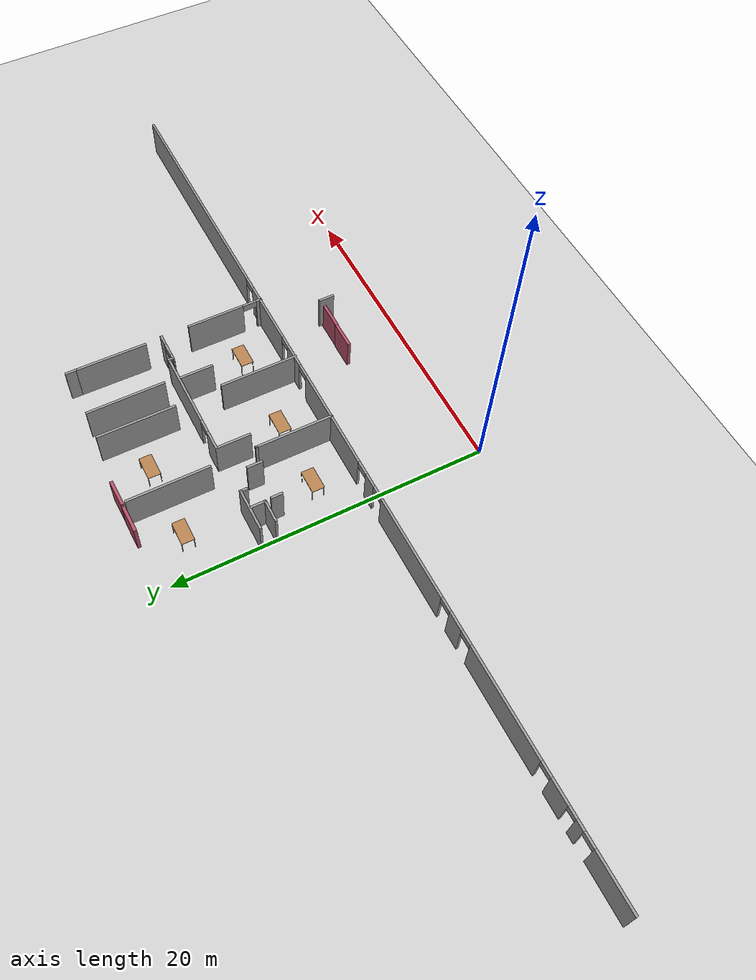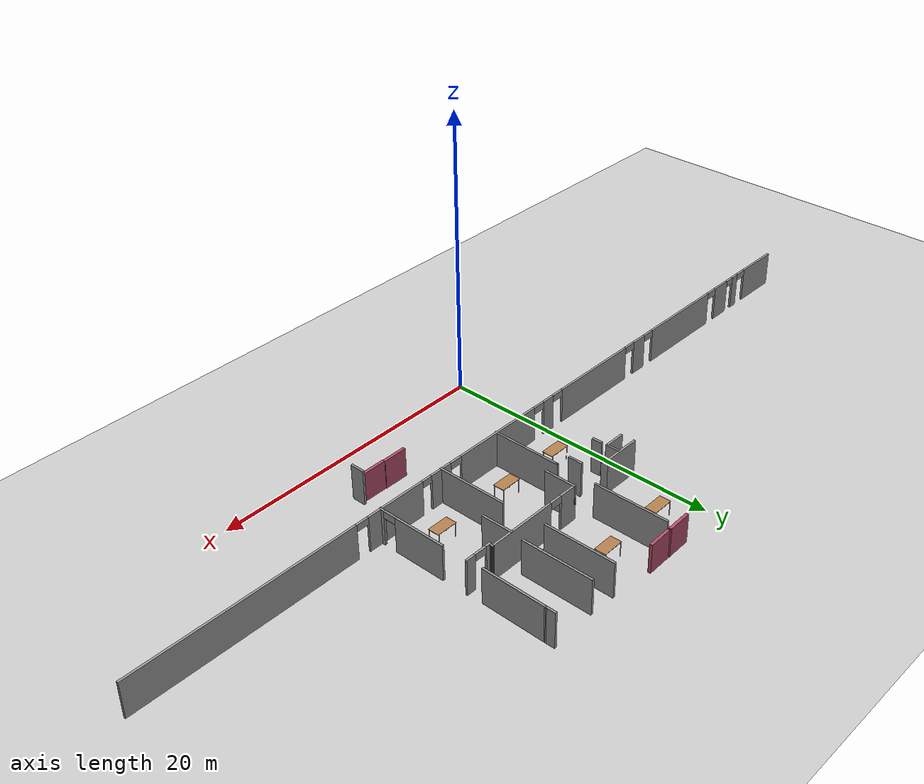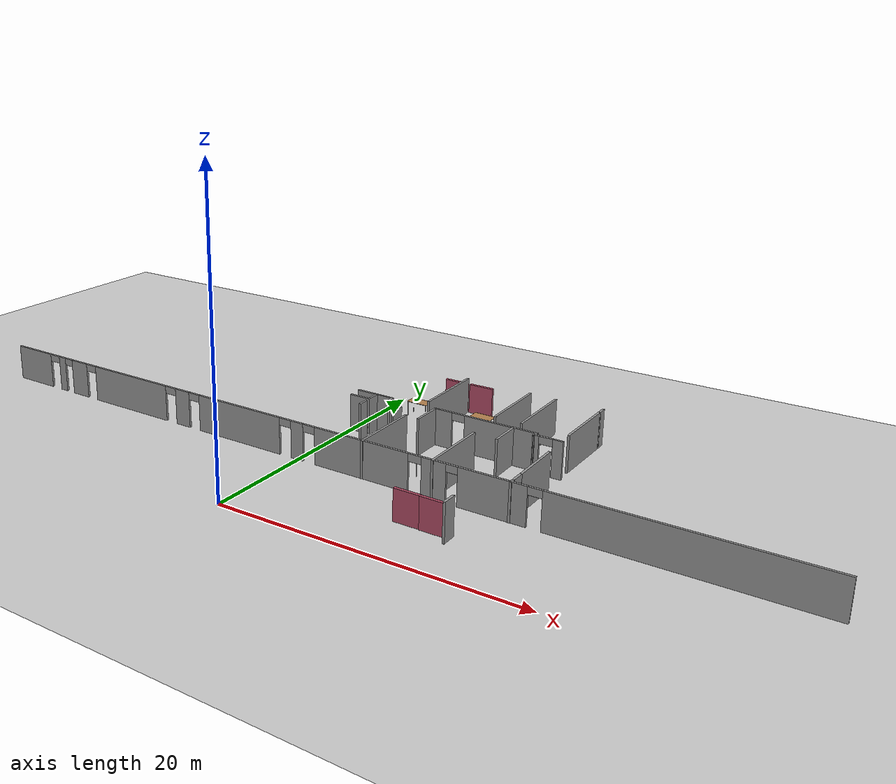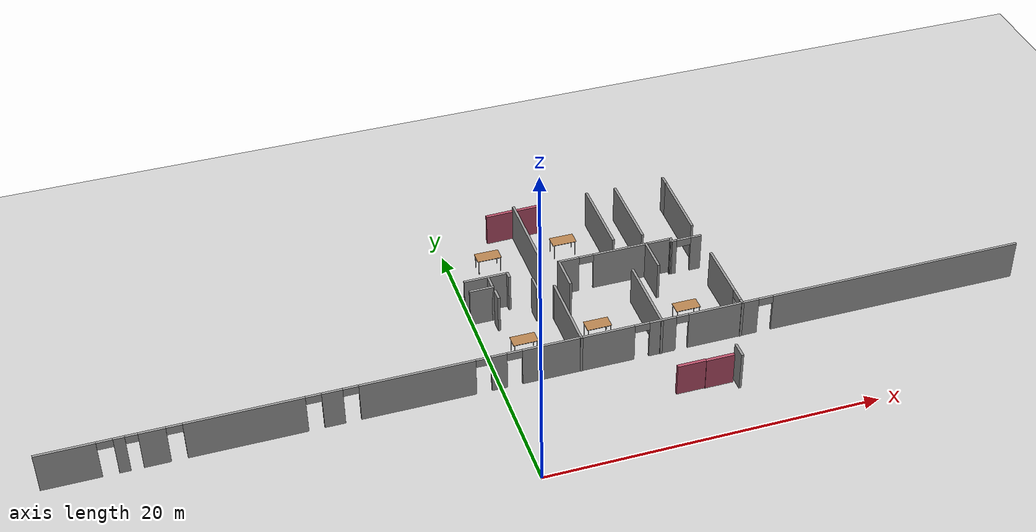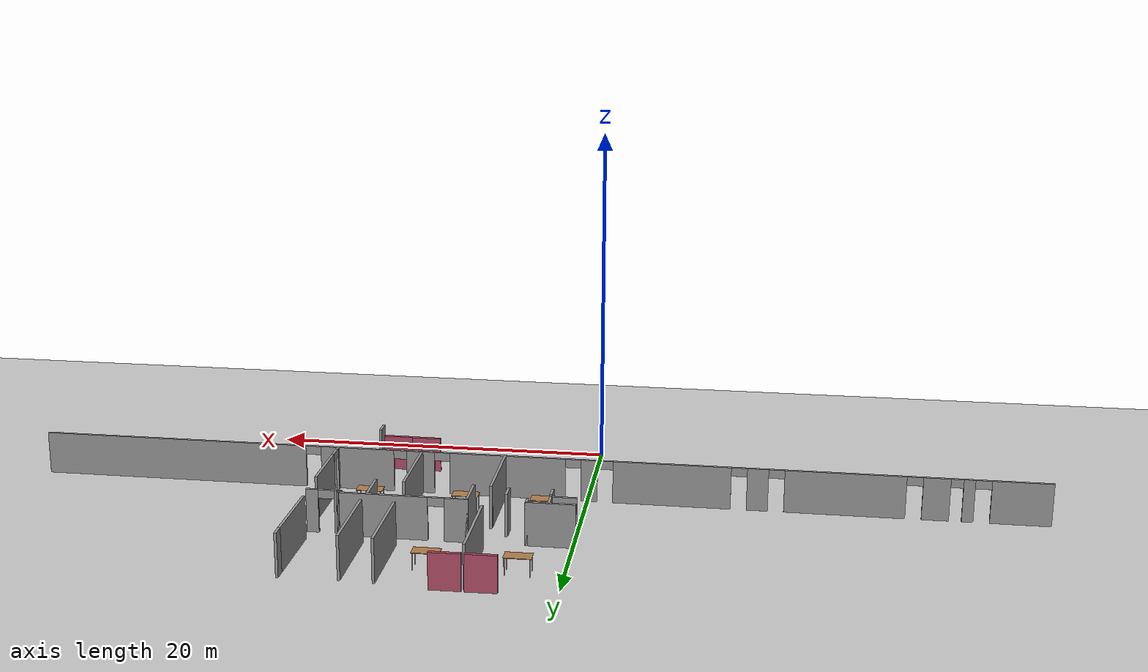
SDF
<sdf version="1.6">
 <world name="default">
  <model name="ground_plane">
   <static>1</static>
   <link name="link">
    <collision name="collision">
     <geometry><plane><normal>0 0 1</normal><size>100 100</size></plane></geometry>
     <surface><friction><ode><mu>100</mu><mu2>50</mu2></ode></friction></surface>
    </collision>
    <visual name="visual">
     <cast_shadows>0</cast_shadows>
     <geometry><plane><normal>0 0 1</normal><size>100 100</size></plane></geometry>
     <material>
      <script><uri>file://media/materials/scripts/gazebo.material</uri><name>Gazebo/Grey</name></script>
     </material>
    </visual>
   </link>
  </model>
  <model name="fin_se1f1.sdf">
   <pose>1.8125 -2.2901 0 0 -0 0</pose>
   <link name="Wall_109">
    <collision name="Wall_109_Collision">
     <geometry><box><size>2.75 0.15 2.5</size></box></geometry>
     <pose>0 0 1.25 0 -0 0</pose>
    </collision>
    <visual name="Wall_109_Visual">
     <pose>0 0 1.25 0 -0 0</pose>
     <geometry><box><size>2.75 0.15 2.5</size></box></geometry>
     <material>
      <script><uri>file://media/materials/scripts/gazebo.material</uri><name>Gazebo/Grey</name></script>
      <ambient>1 1 1 1</ambient>
     </material>
     <meta><layer>0</layer></meta>
    </visual>
    <pose>-0.574318 16.7244 0 0 -0 0</pose>
   </link>
   <link name="Wall_110">
    <collision name="Wall_110_Collision">
     <geometry><box><size>0.5 0.15 2.5</size></box></geometry>
     <pose>0 0 1.25 0 -0 0</pose>
    </collision>
    <visual name="Wall_110_Visual">
     <pose>0 0 1.25 0 -0 0</pose>
     <geometry><box><size>0.5 0.15 2.5</size></box></geometry>
     <material>
      <script><uri>file://media/materials/scripts/gazebo.material</uri><name>Gazebo/Grey</name></script>
      <ambient>1 1 1 1</ambient>
     </material>
     <meta><layer>0</layer></meta>
    </visual>
    <pose>0.725682 16.5494 0 0 0 -1.5708</pose>
   </link>
   <link name="Wall_141">
    <pose>11.923 16.5396 0 0 -0 3.14159</pose>
    <visual name="Wall_141_Visual_0">
     <pose>-0.657066 0 1.25 0 -0 0</pose>
     <geometry><box><size>0.685867 0.15 2.5</size></box></geometry>
     <material>
      <script><uri>file://media/materials/scripts/gazebo.material</uri><name>Gazebo/Grey</name></script>
      <ambient>1 1 1 1</ambient>
     </material>
     <meta><layer>0</layer></meta>
    </visual>
    <collision name="Wall_141_Collision_0">
     <geometry><box><size>0.685867 0.15 2.5</size></box></geometry>
     <pose>-0.657066 0 1.25 0 -0 0</pose>
    </collision>
    <visual name="Wall_141_Visual_1">
     <pose>0.792934 0 1.25 0 -0 0</pose>
     <geometry><box><size>0.414133 0.15 2.5</size></box></geometry>
     <material>
      <script><uri>file://media/materials/scripts/gazebo.material</uri><name>Gazebo/Grey</name></script>
      <ambient>1 1 1 1</ambient>
     </material>
     <meta><layer>0</layer></meta>
    </visual>
    <collision name="Wall_141_Collision_1">
     <geometry><box><size>0.414133 0.15 2.5</size></box></geometry>
     <pose>0.792934 0 1.25 0 -0 0</pose>
    </collision>
    <visual name="Wall_141_Visual_2">
     <pose>0.135867 0 2.25 0 -0 0</pose>
     <geometry><box><size>0.9 0.15 0.5</size></box></geometry>
     <material>
      <script><uri>file://media/materials/scripts/gazebo.material</uri><name>Gazebo/Grey</name></script>
      <ambient>1 1 1 1</ambient>
     </material>
     <meta><layer>0</layer></meta>
    </visual>
    <collision name="Wall_141_Collision_2">
     <geometry><box><size>0.9 0.15 0.5</size></box></geometry>
     <pose>0.135867 0 2.25 0 -0 0</pose>
    </collision>
   </link>
   <link name="Wall_144">
    <collision name="Wall_144_Collision">
     <geometry><box><size>2.25 0.15 2.5</size></box></geometry>
     <pose>0 0 1.25 0 -0 0</pose>
    </collision>
    <visual name="Wall_144_Visual">
     <pose>0 0 1.25 0 -0 0</pose>
     <geometry><box><size>2.25 0.15 2.5</size></box></geometry>
     <material>
      <script><uri>file://media/materials/scripts/gazebo.material</uri><name>Gazebo/Grey</name></script>
      <ambient>1 1 1 1</ambient>
     </material>
     <meta><layer>0</layer></meta>
    </visual>
    <pose>3.95745 15.7396 0 0 -0 1.5708</pose>
   </link>
   <link name="Wall_145">
    <pose>7.50746 16.7896 0 0 -0 0</pose>
    <visual name="Wall_145_Visual_0">
     <pose>-2.96499 0 1.25 0 -0 0</pose>
     <geometry><box><size>1.32002 0.15 2.5</size></box></geometry>
     <material>
      <script><uri>file://media/materials/scripts/gazebo.material</uri><name>Gazebo/Grey</name></script>
      <ambient>1 1 1 1</ambient>
     </material>
     <meta><layer>0</layer></meta>
    </visual>
    <collision name="Wall_145_Collision_0">
     <geometry><box><size>1.32002 0.15 2.5</size></box></geometry>
     <pose>-2.96499 0 1.25 0 -0 0</pose>
    </collision>
    <visual name="Wall_145_Visual_1">
     <pose>1.11001 0 1.25 0 -0 0</pose>
     <geometry><box><size>5.02998 0.15 2.5</size></box></geometry>
     <material>
      <script><uri>file://media/materials/scripts/gazebo.material</uri><name>Gazebo/Grey</name></script>
      <ambient>1 1 1 1</ambient>
     </material>
     <meta><layer>0</layer></meta>
    </visual>
    <collision name="Wall_145_Collision_1">
     <geometry><box><size>5.02998 0.15 2.5</size></box></geometry>
     <pose>1.11001 0 1.25 0 -0 0</pose>
    </collision>
    <visual name="Wall_145_Visual_2">
     <pose>-1.85498 0 2.25 0 -0 0</pose>
     <geometry><box><size>0.9 0.15 0.5</size></box></geometry>
     <material>
      <script><uri>file://media/materials/scripts/gazebo.material</uri><name>Gazebo/Grey</name></script>
      <ambient>1 1 1 1</ambient>
     </material>
     <meta><layer>0</layer></meta>
    </visual>
    <collision name="Wall_145_Collision_2">
     <geometry><box><size>0.9 0.15 0.5</size></box></geometry>
     <pose>-1.85498 0 2.25 0 -0 0</pose>
    </collision>
   </link>
   <link name="Wall_146">
    <collision name="Wall_146_Collision">
     <geometry><box><size>0.406976 0.15 2.5</size></box></geometry>
     <pose>0 0 1.25 0 -0 0</pose>
    </collision>
    <visual name="Wall_146_Visual">
     <pose>0 0 1.25 0 -0 0</pose>
     <geometry><box><size>0.406976 0.15 2.5</size></box></geometry>
     <material>
      <script><uri>file://media/materials/scripts/gazebo.material</uri><name>Gazebo/Grey</name></script>
      <ambient>1 1 1 1</ambient>
     </material>
     <meta><layer>0</layer></meta>
    </visual>
    <pose>11.0277 16.6646 0 0 0 -1.80434</pose>
   </link>
   <link name="Wall_148">
    <collision name="Wall_148_Collision">
     <geometry><box><size>2.25 0.15 2.5</size></box></geometry>
     <pose>0 0 1.25 0 -0 0</pose>
    </collision>
    <visual name="Wall_148_Visual">
     <pose>0 0 1.25 0 -0 0</pose>
     <geometry><box><size>2.25 0.15 2.5</size></box></geometry>
     <material>
      <script><uri>file://media/materials/scripts/gazebo.material</uri><name>Gazebo/Grey</name></script>
      <ambient>1 1 1 1</ambient>
     </material>
     <meta><layer>0</layer></meta>
    </visual>
    <pose>9.46821 15.7262 0 0 0 -1.5708</pose>
   </link>
   <link name="Wall_150">
    <collision name="Wall_150_Collision">
     <geometry><box><size>1.5 0.15 2.5</size></box></geometry>
     <pose>0 0 1.25 0 -0 0</pose>
    </collision>
    <visual name="Wall_150_Visual">
     <pose>0 0 1.25 0 -0 0</pose>
     <geometry><box><size>1.5 0.15 2.5</size></box></geometry>
     <material>
      <script><uri>file://media/materials/scripts/gazebo.material</uri><name>Gazebo/Grey</name></script>
      <ambient>1 1 1 1</ambient>
     </material>
     <meta><layer>0</layer></meta>
    </visual>
    <pose>-1.14582 15.7597 0 0 -0 0</pose>
   </link>
   <link name="Wall_151">
    <collision name="Wall_151_Collision">
     <geometry><box><size>1 0.15 2.5</size></box></geometry>
     <pose>0 0 1.25 0 -0 0</pose>
    </collision>
    <visual name="Wall_151_Visual">
     <pose>0 0 1.25 0 -0 0</pose>
     <geometry><box><size>1 0.15 2.5</size></box></geometry>
     <material>
      <script><uri>file://media/materials/scripts/gazebo.material</uri><name>Gazebo/Grey</name></script>
      <ambient>1 1 1 1</ambient>
     </material>
     <meta><layer>0</layer></meta>
    </visual>
    <pose>-0.470815 16.1847 0 0 -0 1.5708</pose>
   </link>
   <link name="Wall_153">
    <collision name="Wall_153_Collision">
     <geometry><box><size>0.75 0.15 2.5</size></box></geometry>
     <pose>0 0 1.25 0 -0 0</pose>
    </collision>
    <visual name="Wall_153_Visual">
     <pose>0 0 1.25 0 -0 0</pose>
     <geometry><box><size>0.75 0.15 2.5</size></box></geometry>
     <material>
      <script><uri>file://media/materials/scripts/gazebo.material</uri><name>Gazebo/Grey</name></script>
      <ambient>1 1 1 1</ambient>
     </material>
     <meta><layer>0</layer></meta>
    </visual>
    <pose>-0.42975 15.0316 0 0 0 -1.5708</pose>
   </link>
   <link name="Wall_155">
    <collision name="Wall_155_Collision">
     <geometry><box><size>1 0.15 2.5</size></box></geometry>
     <pose>0 0 1.25 0 -0 0</pose>
    </collision>
    <visual name="Wall_155_Visual">
     <pose>0 0 1.25 0 -0 0</pose>
     <geometry><box><size>1 0.15 2.5</size></box></geometry>
     <material>
      <script><uri>file://media/materials/scripts/gazebo.material</uri><name>Gazebo/Grey</name></script>
      <ambient>1 1 1 1</ambient>
     </material>
     <meta><layer>0</layer></meta>
    </visual>
    <pose>1.97786 15.2812 0 0 0 -1.5708</pose>
   </link>
   <link name="Wall_157">
    <collision name="Wall_157_Collision">
     <geometry><box><size>0.160508 0.15 2.5</size></box></geometry>
     <pose>0 0 1.25 0 -0 0</pose>
    </collision>
    <visual name="Wall_157_Visual">
     <pose>0 0 1.25 0 -0 0</pose>
     <geometry><box><size>0.160508 0.15 2.5</size></box></geometry>
     <material>
      <script><uri>file://media/materials/scripts/gazebo.material</uri><name>Gazebo/Grey</name></script>
      <ambient>1 1 1 1</ambient>
     </material>
     <meta><layer>0</layer></meta>
    </visual>
    <pose>2.99441 14.6949 0 0 -0 1.5708</pose>
   </link>
   <link name="Wall_158">
    <collision name="Wall_158_Collision">
     <geometry><box><size>5 0.15 2.5</size></box></geometry>
     <pose>0 0 1.25 0 -0 0</pose>
    </collision>
    <visual name="Wall_158_Visual">
     <pose>0 0 1.25 0 -0 0</pose>
     <geometry><box><size>5 0.15 2.5</size></box></geometry>
     <material>
      <script><uri>file://media/materials/scripts/gazebo.material</uri><name>Gazebo/Grey</name></script>
      <ambient>1 1 1 1</ambient>
     </material>
     <meta><layer>0</layer></meta>
    </visual>
    <pose>2.99441 12.2751 0 0 0 -1.5708</pose>
   </link>
   <link name="Wall_160">
    <collision name="Wall_160_Collision">
     <geometry><box><size>5 0.15 2.5</size></box></geometry>
     <pose>0 0 1.25 0 -0 0</pose>
    </collision>
    <visual name="Wall_160_Visual">
     <pose>0 0 1.25 0 -0 0</pose>
     <geometry><box><size>5 0.15 2.5</size></box></geometry>
     <material>
      <script><uri>file://media/materials/scripts/gazebo.material</uri><name>Gazebo/Grey</name></script>
      <ambient>1 1 1 1</ambient>
     </material>
     <meta><layer>0</layer></meta>
    </visual>
    <pose>7.86314 12.2646 0 0 0 -1.5708</pose>
   </link>
   <link name="Wall_2">
    <collision name="Wall_2_Collision">
     <geometry><box><size>1 0.15 2.5</size></box></geometry>
     <pose>0 0 1.25 0 -0 0</pose>
    </collision>
    <visual name="Wall_2_Visual">
     <pose>0 0 1.25 0 -0 0</pose>
     <geometry><box><size>1 0.15 2.5</size></box></geometry>
     <material>
      <script><uri>file://media/materials/scripts/gazebo.material</uri><name>Gazebo/Grey</name></script>
      <ambient>1 1 1 1</ambient>
     </material>
     <meta><layer>0</layer></meta>
    </visual>
    <pose>11.1004 6.09957 0 0 0 -1.5708</pose>
   </link>
   <link name="Wall_20">
    <collision name="Wall_20_Collision">
     <geometry><box><size>0.75 0.15 2.5</size></box></geometry>
     <pose>0 0 1.25 0 -0 0</pose>
    </collision>
    <visual name="Wall_20_Visual">
     <pose>0 0 1.25 0 -0 0</pose>
     <geometry><box><size>0.75 0.15 2.5</size></box></geometry>
     <material>
      <script><uri>file://media/materials/scripts/gazebo.material</uri><name>Gazebo/Grey</name></script>
      <ambient>1 1 1 1</ambient>
     </material>
     <meta><layer>0</layer></meta>
    </visual>
    <pose>12.8004 22.4246 0 0 -0 1.5708</pose>
   </link>
   <link name="Wall_30">
    <pose>1.50043 9.87457 0 0 -0 0</pose>
    <visual name="Wall_30_Visual_0">
     <pose>-27.4547 0 1.25 0 -0 0</pose>
     <geometry><box><size>3.34055 0.15 2.5</size></box></geometry>
     <material>
      <script><uri>file://media/materials/scripts/gazebo.material</uri><name>Gazebo/Grey</name></script>
      <ambient>1 1 1 1</ambient>
     </material>
     <meta><layer>0</layer></meta>
    </visual>
    <collision name="Wall_30_Collision_0">
     <geometry><box><size>3.34055 0.15 2.5</size></box></geometry>
     <pose>-27.4547 0 1.25 0 -0 0</pose>
    </collision>
    <visual name="Wall_30_Visual_1">
     <pose>-24.5701 0 1.25 0 -0 0</pose>
     <geometry><box><size>0.628632 0.15 2.5</size></box></geometry>
     <material>
      <script><uri>file://media/materials/scripts/gazebo.material</uri><name>Gazebo/Grey</name></script>
      <ambient>1 1 1 1</ambient>
     </material>
     <meta><layer>0</layer></meta>
    </visual>
    <collision name="Wall_30_Collision_1">
     <geometry><box><size>0.628632 0.15 2.5</size></box></geometry>
     <pose>-24.5701 0 1.25 0 -0 0</pose>
    </collision>
    <visual name="Wall_30_Visual_2">
     <pose>-22.8102 0 1.25 0 -0 0</pose>
     <geometry><box><size>1.49352 0.15 2.5</size></box></geometry>
     <material>
      <script><uri>file://media/materials/scripts/gazebo.material</uri><name>Gazebo/Grey</name></script>
      <ambient>1 1 1 1</ambient>
     </material>
     <meta><layer>0</layer></meta>
    </visual>
    <collision name="Wall_30_Collision_2">
     <geometry><box><size>1.49352 0.15 2.5</size></box></geometry>
     <pose>-22.8102 0 1.25 0 -0 0</pose>
    </collision>
    <visual name="Wall_30_Visual_3">
     <pose>-17.8019 0 1.25 0 -0 0</pose>
     <geometry><box><size>6.72304 0.15 2.5</size></box></geometry>
     <material>
      <script><uri>file://media/materials/scripts/gazebo.material</uri><name>Gazebo/Grey</name></script>
      <ambient>1 1 1 1</ambient>
     </material>
     <meta><layer>0</layer></meta>
    </visual>
    <collision name="Wall_30_Collision_3">
     <geometry><box><size>6.72304 0.15 2.5</size></box></geometry>
     <pose>-17.8019 0 1.25 0 -0 0</pose>
    </collision>
    <visual name="Wall_30_Visual_4">
     <pose>-12.9445 0 1.25 0 -0 0</pose>
     <geometry><box><size>1.19181 0.15 2.5</size></box></geometry>
     <material>
      <script><uri>file://media/materials/scripts/gazebo.material</uri><name>Gazebo/Grey</name></script>
      <ambient>1 1 1 1</ambient>
     </material>
     <meta><layer>0</layer></meta>
    </visual>
    <collision name="Wall_30_Collision_4">
     <geometry><box><size>1.19181 0.15 2.5</size></box></geometry>
     <pose>-12.9445 0 1.25 0 -0 0</pose>
    </collision>
    <visual name="Wall_30_Visual_5">
     <pose>-8.09712 0 1.25 0 -0 0</pose>
     <geometry><box><size>6.70293 0.15 2.5</size></box></geometry>
     <material>
      <script><uri>file://media/materials/scripts/gazebo.material</uri><name>Gazebo/Grey</name></script>
      <ambient>1 1 1 1</ambient>
     </material>
     <meta><layer>0</layer></meta>
    </visual>
    <collision name="Wall_30_Collision_5">
     <geometry><box><size>6.70293 0.15 2.5</size></box></geometry>
     <pose>-8.09712 0 1.25 0 -0 0</pose>
    </collision>
    <visual name="Wall_30_Visual_6">
     <pose>-3.38049 0 1.25 0 -0 0</pose>
     <geometry><box><size>0.930335 0.15 2.5</size></box></geometry>
     <material>
      <script><uri>file://media/materials/scripts/gazebo.material</uri><name>Gazebo/Grey</name></script>
      <ambient>1 1 1 1</ambient>
     </material>
     <meta><layer>0</layer></meta>
    </visual>
    <collision name="Wall_30_Collision_6">
     <geometry><box><size>0.930335 0.15 2.5</size></box></geometry>
     <pose>-3.38049 0 1.25 0 -0 0</pose>
    </collision>
    <visual name="Wall_30_Visual_7">
     <pose>1.35626 0 1.25 0 -0 0</pose>
     <geometry><box><size>6.74316 0.15 2.5</size></box></geometry>
     <material>
      <script><uri>file://media/materials/scripts/gazebo.material</uri><name>Gazebo/Grey</name></script>
      <ambient>1 1 1 1</ambient>
     </material>
     <meta><layer>0</layer></meta>
    </visual>
    <collision name="Wall_30_Collision_7">
     <geometry><box><size>6.74316 0.15 2.5</size></box></geometry>
     <pose>1.35626 0 1.25 0 -0 0</pose>
    </collision>
    <visual name="Wall_30_Visual_8">
     <pose>6.44499 0 1.25 0 -0 0</pose>
     <geometry><box><size>1.63431 0.15 2.5</size></box></geometry>
     <material>
      <script><uri>file://media/materials/scripts/gazebo.material</uri><name>Gazebo/Grey</name></script>
      <ambient>1 1 1 1</ambient>
     </material>
     <meta><layer>0</layer></meta>
    </visual>
    <collision name="Wall_30_Collision_8">
     <geometry><box><size>1.63431 0.15 2.5</size></box></geometry>
     <pose>6.44499 0 1.25 0 -0 0</pose>
    </collision>
    <visual name="Wall_30_Visual_9">
     <pose>10.1962 0 1.25 0 -0 0</pose>
     <geometry><box><size>4.34964 0.15 2.5</size></box></geometry>
     <material>
      <script><uri>file://media/materials/scripts/gazebo.material</uri><name>Gazebo/Grey</name></script>
      <ambient>1 1 1 1</ambient>
     </material>
     <meta><layer>0</layer></meta>
    </visual>
    <collision name="Wall_30_Collision_9">
     <geometry><box><size>4.34964 0.15 2.5</size></box></geometry>
     <pose>10.1962 0 1.25 0 -0 0</pose>
    </collision>
    <visual name="Wall_30_Visual_10">
     <pose>21.198 0 1.25 0 -0 0</pose>
     <geometry><box><size>15.854 0.15 2.5</size></box></geometry>
     <material>
      <script><uri>file://media/materials/scripts/gazebo.material</uri><name>Gazebo/Grey</name></script>
      <ambient>1 1 1 1</ambient>
     </material>
     <meta><layer>0</layer></meta>
    </visual>
    <collision name="Wall_30_Collision_10">
     <geometry><box><size>15.854 0.15 2.5</size></box></geometry>
     <pose>21.198 0 1.25 0 -0 0</pose>
    </collision>
    <visual name="Wall_30_Visual_11">
     <pose>-25.3345 0 2.25 0 -0 0</pose>
     <geometry><box><size>0.9 0.15 0.5</size></box></geometry>
     <material>
      <script><uri>file://media/materials/scripts/gazebo.material</uri><name>Gazebo/Grey</name></script>
      <ambient>1 1 1 1</ambient>
     </material>
     <meta><layer>0</layer></meta>
    </visual>
    <collision name="Wall_30_Collision_11">
     <geometry><box><size>0.9 0.15 0.5</size></box></geometry>
     <pose>-25.3345 0 2.25 0 -0 0</pose>
    </collision>
    <visual name="Wall_30_Visual_12">
     <pose>-23.9064 0 2.25 0 -0 0</pose>
     <geometry><box><size>0.698864 0.15 0.5</size></box></geometry>
     <material>
      <script><uri>file://media/materials/scripts/gazebo.material</uri><name>Gazebo/Grey</name></script>
      <ambient>1 1 1 1</ambient>
     </material>
     <meta><layer>0</layer></meta>
    </visual>
    <collision name="Wall_30_Collision_12">
     <geometry><box><size>0.698864 0.15 0.5</size></box></geometry>
     <pose>-23.9064 0 2.25 0 -0 0</pose>
    </collision>
    <visual name="Wall_30_Visual_13">
     <pose>-21.6134 0 2.25 0 -0 0</pose>
     <geometry><box><size>0.9 0.15 0.5</size></box></geometry>
     <material>
      <script><uri>file://media/materials/scripts/gazebo.material</uri><name>Gazebo/Grey</name></script>
      <ambient>1 1 1 1</ambient>
     </material>
     <meta><layer>0</layer></meta>
    </visual>
    <collision name="Wall_30_Collision_13">
     <geometry><box><size>0.9 0.15 0.5</size></box></geometry>
     <pose>-21.6134 0 2.25 0 -0 0</pose>
    </collision>
    <visual name="Wall_30_Visual_14">
     <pose>-13.9904 0 2.25 0 -0 0</pose>
     <geometry><box><size>0.9 0.15 0.5</size></box></geometry>
     <material>
      <script><uri>file://media/materials/scripts/gazebo.material</uri><name>Gazebo/Grey</name></script>
      <ambient>1 1 1 1</ambient>
     </material>
     <meta><layer>0</layer></meta>
    </visual>
    <collision name="Wall_30_Collision_14">
     <geometry><box><size>0.9 0.15 0.5</size></box></geometry>
     <pose>-13.9904 0 2.25 0 -0 0</pose>
    </collision>
    <visual name="Wall_30_Visual_15">
     <pose>-11.8986 0 2.25 0 -0 0</pose>
     <geometry><box><size>0.9 0.15 0.5</size></box></geometry>
     <material>
      <script><uri>file://media/materials/scripts/gazebo.material</uri><name>Gazebo/Grey</name></script>
      <ambient>1 1 1 1</ambient>
     </material>
     <meta><layer>0</layer></meta>
    </visual>
    <collision name="Wall_30_Collision_15">
     <geometry><box><size>0.9 0.15 0.5</size></box></geometry>
     <pose>-11.8986 0 2.25 0 -0 0</pose>
    </collision>
    <visual name="Wall_30_Visual_16">
     <pose>-4.29566 0 2.25 0 -0 0</pose>
     <geometry><box><size>0.9 0.15 0.5</size></box></geometry>
     <material>
      <script><uri>file://media/materials/scripts/gazebo.material</uri><name>Gazebo/Grey</name></script>
      <ambient>1 1 1 1</ambient>
     </material>
     <meta><layer>0</layer></meta>
    </visual>
    <collision name="Wall_30_Collision_16">
     <geometry><box><size>0.9 0.15 0.5</size></box></geometry>
     <pose>-4.29566 0 2.25 0 -0 0</pose>
    </collision>
    <visual name="Wall_30_Visual_17">
     <pose>-2.46532 0 2.25 0 -0 0</pose>
     <geometry><box><size>0.9 0.15 0.5</size></box></geometry>
     <material>
      <script><uri>file://media/materials/scripts/gazebo.material</uri><name>Gazebo/Grey</name></script>
      <ambient>1 1 1 1</ambient>
     </material>
     <meta><layer>0</layer></meta>
    </visual>
    <collision name="Wall_30_Collision_17">
     <geometry><box><size>0.9 0.15 0.5</size></box></geometry>
     <pose>-2.46532 0 2.25 0 -0 0</pose>
    </collision>
    <visual name="Wall_30_Visual_18">
     <pose>5.17784 0 2.25 0 -0 0</pose>
     <geometry><box><size>0.9 0.15 0.5</size></box></geometry>
     <material>
      <script><uri>file://media/materials/scripts/gazebo.material</uri><name>Gazebo/Grey</name></script>
      <ambient>1 1 1 1</ambient>
     </material>
     <meta><layer>0</layer></meta>
    </visual>
    <collision name="Wall_30_Collision_18">
     <geometry><box><size>0.9 0.15 0.5</size></box></geometry>
     <pose>5.17784 0 2.25 0 -0 0</pose>
    </collision>
    <visual name="Wall_30_Visual_19">
     <pose>7.64175 0 2.25 0 -0 0</pose>
     <geometry><box><size>0.759205 0.15 0.5</size></box></geometry>
     <material>
      <script><uri>file://media/materials/scripts/gazebo.material</uri><name>Gazebo/Grey</name></script>
      <ambient>1 1 1 1</ambient>
     </material>
     <meta><layer>0</layer></meta>
    </visual>
    <collision name="Wall_30_Collision_19">
     <geometry><box><size>0.759205 0.15 0.5</size></box></geometry>
     <pose>7.64175 0 2.25 0 -0 0</pose>
    </collision>
    <visual name="Wall_30_Visual_20">
     <pose>12.821 0 2.25 0 -0 0</pose>
     <geometry><box><size>0.9 0.15 0.5</size></box></geometry>
     <material>
      <script><uri>file://media/materials/scripts/gazebo.material</uri><name>Gazebo/Grey</name></script>
      <ambient>1 1 1 1</ambient>
     </material>
     <meta><layer>0</layer></meta>
    </visual>
    <collision name="Wall_30_Collision_20">
     <geometry><box><size>0.9 0.15 0.5</size></box></geometry>
     <pose>12.821 0 2.25 0 -0 0</pose>
    </collision>
   </link>
   <link name="Wall_70">
    <collision name="Wall_70_Collision">
     <geometry><box><size>4.60106 0.15 2.5</size></box></geometry>
     <pose>0 0 1.25 0 -0 0</pose>
    </collision>
    <visual name="Wall_70_Visual">
     <pose>0 0 1.25 0 -0 0</pose>
     <geometry><box><size>4.60106 0.15 2.5</size></box></geometry>
     <material>
      <script><uri>file://media/materials/scripts/gazebo.material</uri><name>Gazebo/Grey</name></script>
      <ambient>1 1 1 1</ambient>
     </material>
     <meta><layer>0</layer></meta>
    </visual>
    <pose>12.7793 19.8991 0 0 -0 1.5613</pose>
   </link>
   <link name="Wall_72">
    <collision name="Wall_72_Collision">
     <geometry><box><size>5 0.15 2.5</size></box></geometry>
     <pose>0 0 1.25 0 -0 0</pose>
    </collision>
    <visual name="Wall_72_Visual">
     <pose>0 0 1.25 0 -0 0</pose>
     <geometry><box><size>5 0.15 2.5</size></box></geometry>
     <material>
      <script><uri>file://media/materials/scripts/gazebo.material</uri><name>Gazebo/Grey</name></script>
      <ambient>1 1 1 1</ambient>
     </material>
     <meta><layer>0</layer></meta>
    </visual>
    <pose>9.57098 20.1709 0 0 0 -1.5708</pose>
   </link>
   <link name="Wall_74">
    <collision name="Wall_74_Collision">
     <geometry><box><size>5 0.15 2.5</size></box></geometry>
     <pose>0 0 1.25 0 -0 0</pose>
    </collision>
    <visual name="Wall_74_Visual">
     <pose>0 0 1.25 0 -0 0</pose>
     <geometry><box><size>5 0.15 2.5</size></box></geometry>
     <material>
      <script><uri>file://media/materials/scripts/gazebo.material</uri><name>Gazebo/Grey</name></script>
      <ambient>1 1 1 1</ambient>
     </material>
     <meta><layer>0</layer></meta>
    </visual>
    <pose>7.72515 20.2325 0 0 0 -1.5708</pose>
   </link>
   <link name="Wall_76">
    <collision name="Wall_76_Collision">
     <geometry><box><size>5.25 0.15 2.5</size></box></geometry>
     <pose>0 0 1.25 0 -0 0</pose>
    </collision>
    <visual name="Wall_76_Visual">
     <pose>0 0 1.25 0 -0 0</pose>
     <geometry><box><size>5.25 0.15 2.5</size></box></geometry>
     <material>
      <script><uri>file://media/materials/scripts/gazebo.material</uri><name>Gazebo/Grey</name></script>
      <ambient>1 1 1 1</ambient>
     </material>
     <meta><layer>0</layer></meta>
    </visual>
    <pose>2.9875 20.1729 0 0 0 -1.5708</pose>
   </link>
   <link name="Wall_89">
    <pose>12.848 12.2646 0 0 0 -1.5708</pose>
    <visual name="Wall_89_Visual_0">
     <pose>-0.649847 0 1.25 0 -0 0</pose>
     <geometry><box><size>3.70031 0.15 2.5</size></box></geometry>
     <material>
      <script><uri>file://media/materials/scripts/gazebo.material</uri><name>Gazebo/Grey</name></script>
      <ambient>1 1 1 1</ambient>
     </material>
     <meta><layer>0</layer></meta>
    </visual>
    <collision name="Wall_89_Collision_0">
     <geometry><box><size>3.70031 0.15 2.5</size></box></geometry>
     <pose>-0.649847 0 1.25 0 -0 0</pose>
    </collision>
    <visual name="Wall_89_Visual_1">
     <pose>2.30015 0 1.25 0 -0 0</pose>
     <geometry><box><size>0.399694 0.15 2.5</size></box></geometry>
     <material>
      <script><uri>file://media/materials/scripts/gazebo.material</uri><name>Gazebo/Grey</name></script>
      <ambient>1 1 1 1</ambient>
     </material>
     <meta><layer>0</layer></meta>
    </visual>
    <collision name="Wall_89_Collision_1">
     <geometry><box><size>0.399694 0.15 2.5</size></box></geometry>
     <pose>2.30015 0 1.25 0 -0 0</pose>
    </collision>
    <visual name="Wall_89_Visual_2">
     <pose>1.65031 0 2.25 0 -0 0</pose>
     <geometry><box><size>0.9 0.15 0.5</size></box></geometry>
     <material>
      <script><uri>file://media/materials/scripts/gazebo.material</uri><name>Gazebo/Grey</name></script>
      <ambient>1 1 1 1</ambient>
     </material>
     <meta><layer>0</layer></meta>
    </visual>
    <collision name="Wall_89_Collision_2">
     <geometry><box><size>0.9 0.15 0.5</size></box></geometry>
     <pose>1.65031 0 2.25 0 -0 0</pose>
    </collision>
   </link>
   <static>1</static>
  </model>
  <model name="table_8">
   <static>1</static>
   <link name="link">
    <collision name="surface">
     <pose>0 0 1 0 -0 0</pose>
     <geometry><box><size>1.5 0.8 0.03</size></box></geometry>
     <surface><friction><ode><mu>0.6</mu><mu2>0.6</mu2></ode></friction></surface>
    </collision>
    <visual name="visual1">
     <pose>0 0 1 0 -0 0</pose>
     <geometry><box><size>1.5 0.8 0.03</size></box></geometry>
     <material>
      <script><uri>file://media/materials/scripts/gazebo.material</uri><name>Gazebo/Wood</name></script>
     </material>
    </visual>
    <collision name="front_left_leg">
     <pose>0.68 0.38 0.5 0 -0 0</pose>
     <geometry><cylinder><radius>0.02</radius><length>1</length></cylinder></geometry>
    </collision>
    <visual name="front_left_leg">
     <pose>0.68 0.38 0.5 0 -0 0</pose>
     <geometry><cylinder><radius>0.02</radius><length>1</length></cylinder></geometry>
     <material>
      <script><uri>file://media/materials/scripts/gazebo.material</uri><name>Gazebo/Grey</name></script>
     </material>
    </visual>
    <collision name="front_right_leg">
     <pose>0.68 -0.38 0.5 0 -0 0</pose>
     <geometry><cylinder><radius>0.02</radius><length>1</length></cylinder></geometry>
    </collision>
    <visual name="front_right_leg">
     <pose>0.68 -0.38 0.5 0 -0 0</pose>
     <geometry><cylinder><radius>0.02</radius><length>1</length></cylinder></geometry>
     <material>
      <script><uri>file://media/materials/scripts/gazebo.material</uri><name>Gazebo/Grey</name></script>
     </material>
    </visual>
    <collision name="back_right_leg">
     <pose>-0.68 -0.38 0.5 0 -0 0</pose>
     <geometry><cylinder><radius>0.02</radius><length>1</length></cylinder></geometry>
    </collision>
    <visual name="back_right_leg">
     <pose>-0.68 -0.38 0.5 0 -0 0</pose>
     <geometry><cylinder><radius>0.02</radius><length>1</length></cylinder></geometry>
     <material>
      <script><uri>file://media/materials/scripts/gazebo.material</uri><name>Gazebo/Grey</name></script>
     </material>
    </visual>
    <collision name="back_left_leg">
     <pose>-0.68 0.38 0.5 0 -0 0</pose>
     <geometry><cylinder><radius>0.02</radius><length>1</length></cylinder></geometry>
    </collision>
    <visual name="back_left_leg">
     <pose>-0.68 0.38 0.5 0 -0 0</pose>
     <geometry><cylinder><radius>0.02</radius><length>1</length></cylinder></geometry>
     <material>
      <script><uri>file://media/materials/scripts/gazebo.material</uri><name>Gazebo/Grey</name></script>
     </material>
    </visual>
   </link>
   <pose>2.18282 10.0913 0 0 -0 0</pose>
  </model>
  <model name="table_9">
   <static>1</static>
   <link name="link">
    <collision name="surface">
     <pose>0 0 1 0 -0 0</pose>
     <geometry><box><size>1.5 0.8 0.03</size></box></geometry>
     <surface><friction><ode><mu>0.6</mu><mu2>0.6</mu2></ode></friction></surface>
    </collision>
    <visual name="visual1">
     <pose>0 0 1 0 -0 0</pose>
     <geometry><box><size>1.5 0.8 0.03</size></box></geometry>
     <material>
      <script><uri>file://media/materials/scripts/gazebo.material</uri><name>Gazebo/Wood</name></script>
     </material>
    </visual>
    <collision name="front_left_leg">
     <pose>0.68 0.38 0.5 0 -0 0</pose>
     <geometry><cylinder><radius>0.02</radius><length>1</length></cylinder></geometry>
    </collision>
    <visual name="front_left_leg">
     <pose>0.68 0.38 0.5 0 -0 0</pose>
     <geometry><cylinder><radius>0.02</radius><length>1</length></cylinder></geometry>
     <material>
      <script><uri>file://media/materials/scripts/gazebo.material</uri><name>Gazebo/Grey</name></script>
     </material>
    </visual>
    <collision name="front_right_leg">
     <pose>0.68 -0.38 0.5 0 -0 0</pose>
     <geometry><cylinder><radius>0.02</radius><length>1</length></cylinder></geometry>
    </collision>
    <visual name="front_right_leg">
     <pose>0.68 -0.38 0.5 0 -0 0</pose>
     <geometry><cylinder><radius>0.02</radius><length>1</length></cylinder></geometry>
     <material>
      <script><uri>file://media/materials/scripts/gazebo.material</uri><name>Gazebo/Grey</name></script>
     </material>
    </visual>
    <collision name="back_right_leg">
     <pose>-0.68 -0.38 0.5 0 -0 0</pose>
     <geometry><cylinder><radius>0.02</radius><length>1</length></cylinder></geometry>
    </collision>
    <visual name="back_right_leg">
     <pose>-0.68 -0.38 0.5 0 -0 0</pose>
     <geometry><cylinder><radius>0.02</radius><length>1</length></cylinder></geometry>
     <material>
      <script><uri>file://media/materials/scripts/gazebo.material</uri><name>Gazebo/Grey</name></script>
     </material>
    </visual>
    <collision name="back_left_leg">
     <pose>-0.68 0.38 0.5 0 -0 0</pose>
     <geometry><cylinder><radius>0.02</radius><length>1</length></cylinder></geometry>
    </collision>
    <visual name="back_left_leg">
     <pose>-0.68 0.38 0.5 0 -0 0</pose>
     <geometry><cylinder><radius>0.02</radius><length>1</length></cylinder></geometry>
     <material>
      <script><uri>file://media/materials/scripts/gazebo.material</uri><name>Gazebo/Grey</name></script>
     </material>
    </visual>
   </link>
   <pose>2.40774 18.1462 0 0 -0 0</pose>
  </model>
  <model name="table_10">
   <static>1</static>
   <link name="link">
    <collision name="surface">
     <pose>0 0 1 0 -0 0</pose>
     <geometry><box><size>1.5 0.8 0.03</size></box></geometry>
     <surface><friction><ode><mu>0.6</mu><mu2>0.6</mu2></ode></friction></surface>
    </collision>
    <visual name="visual1">
     <pose>0 0 1 0 -0 0</pose>
     <geometry><box><size>1.5 0.8 0.03</size></box></geometry>
     <material>
      <script><uri>file://media/materials/scripts/gazebo.material</uri><name>Gazebo/Wood</name></script>
     </material>
    </visual>
    <collision name="front_left_leg">
     <pose>0.68 0.38 0.5 0 -0 0</pose>
     <geometry><cylinder><radius>0.02</radius><length>1</length></cylinder></geometry>
    </collision>
    <visual name="front_left_leg">
     <pose>0.68 0.38 0.5 0 -0 0</pose>
     <geometry><cylinder><radius>0.02</radius><length>1</length></cylinder></geometry>
     <material>
      <script><uri>file://media/materials/scripts/gazebo.material</uri><name>Gazebo/Grey</name></script>
     </material>
    </visual>
    <collision name="front_right_leg">
     <pose>0.68 -0.38 0.5 0 -0 0</pose>
     <geometry><cylinder><radius>0.02</radius><length>1</length></cylinder></geometry>
    </collision>
    <visual name="front_right_leg">
     <pose>0.68 -0.38 0.5 0 -0 0</pose>
     <geometry><cylinder><radius>0.02</radius><length>1</length></cylinder></geometry>
     <material>
      <script><uri>file://media/materials/scripts/gazebo.material</uri><name>Gazebo/Grey</name></script>
     </material>
    </visual>
    <collision name="back_right_leg">
     <pose>-0.68 -0.38 0.5 0 -0 0</pose>
     <geometry><cylinder><radius>0.02</radius><length>1</length></cylinder></geometry>
    </collision>
    <visual name="back_right_leg">
     <pose>-0.68 -0.38 0.5 0 -0 0</pose>
     <geometry><cylinder><radius>0.02</radius><length>1</length></cylinder></geometry>
     <material>
      <script><uri>file://media/materials/scripts/gazebo.material</uri><name>Gazebo/Grey</name></script>
     </material>
    </visual>
    <collision name="back_left_leg">
     <pose>-0.68 0.38 0.5 0 -0 0</pose>
     <geometry><cylinder><radius>0.02</radius><length>1</length></cylinder></geometry>
    </collision>
    <visual name="back_left_leg">
     <pose>-0.68 0.38 0.5 0 -0 0</pose>
     <geometry><cylinder><radius>0.02</radius><length>1</length></cylinder></geometry>
     <material>
      <script><uri>file://media/materials/scripts/gazebo.material</uri><name>Gazebo/Grey</name></script>
     </material>
    </visual>
   </link>
   <pose>6.66841 10.0538 0 0 -0 0</pose>
  </model>
  <model name="table_11">
   <static>1</static>
   <link name="link">
    <collision name="surface">
     <pose>0 0 1 0 -0 0</pose>
     <geometry><box><size>1.5 0.8 0.03</size></box></geometry>
     <surface><friction><ode><mu>0.6</mu><mu2>0.6</mu2></ode></friction></surface>
    </collision>
    <visual name="visual1">
     <pose>0 0 1 0 -0 0</pose>
     <geometry><box><size>1.5 0.8 0.03</size></box></geometry>
     <material>
      <script><uri>file://media/materials/scripts/gazebo.material</uri><name>Gazebo/Wood</name></script>
     </material>
    </visual>
    <collision name="front_left_leg">
     <pose>0.68 0.38 0.5 0 -0 0</pose>
     <geometry><cylinder><radius>0.02</radius><length>1</length></cylinder></geometry>
    </collision>
    <visual name="front_left_leg">
     <pose>0.68 0.38 0.5 0 -0 0</pose>
     <geometry><cylinder><radius>0.02</radius><length>1</length></cylinder></geometry>
     <material>
      <script><uri>file://media/materials/scripts/gazebo.material</uri><name>Gazebo/Grey</name></script>
     </material>
    </visual>
    <collision name="front_right_leg">
     <pose>0.68 -0.38 0.5 0 -0 0</pose>
     <geometry><cylinder><radius>0.02</radius><length>1</length></cylinder></geometry>
    </collision>
    <visual name="front_right_leg">
     <pose>0.68 -0.38 0.5 0 -0 0</pose>
     <geometry><cylinder><radius>0.02</radius><length>1</length></cylinder></geometry>
     <material>
      <script><uri>file://media/materials/scripts/gazebo.material</uri><name>Gazebo/Grey</name></script>
     </material>
    </visual>
    <collision name="back_right_leg">
     <pose>-0.68 -0.38 0.5 0 -0 0</pose>
     <geometry><cylinder><radius>0.02</radius><length>1</length></cylinder></geometry>
    </collision>
    <visual name="back_right_leg">
     <pose>-0.68 -0.38 0.5 0 -0 0</pose>
     <geometry><cylinder><radius>0.02</radius><length>1</length></cylinder></geometry>
     <material>
      <script><uri>file://media/materials/scripts/gazebo.material</uri><name>Gazebo/Grey</name></script>
     </material>
    </visual>
    <collision name="back_left_leg">
     <pose>-0.68 0.38 0.5 0 -0 0</pose>
     <geometry><cylinder><radius>0.02</radius><length>1</length></cylinder></geometry>
    </collision>
    <visual name="back_left_leg">
     <pose>-0.68 0.38 0.5 0 -0 0</pose>
     <geometry><cylinder><radius>0.02</radius><length>1</length></cylinder></geometry>
     <material>
      <script><uri>file://media/materials/scripts/gazebo.material</uri><name>Gazebo/Grey</name></script>
     </material>
    </visual>
   </link>
   <pose>7.23952 18.2095 0 0 -0 0</pose>
  </model>
  <model name="table_12">
   <static>1</static>
   <link name="link">
    <collision name="surface">
     <pose>0 0 1 0 -0 0</pose>
     <geometry><box><size>1.5 0.8 0.03</size></box></geometry>
     <surface><friction><ode><mu>0.6</mu><mu2>0.6</mu2></ode></friction></surface>
    </collision>
    <visual name="visual1">
     <pose>0 0 1 0 -0 0</pose>
     <geometry><box><size>1.5 0.8 0.03</size></box></geometry>
     <material>
      <script><uri>file://media/materials/scripts/gazebo.material</uri><name>Gazebo/Wood</name></script>
     </material>
    </visual>
    <collision name="front_left_leg">
     <pose>0.68 0.38 0.5 0 -0 0</pose>
     <geometry><cylinder><radius>0.02</radius><length>1</length></cylinder></geometry>
    </collision>
    <visual name="front_left_leg">
     <pose>0.68 0.38 0.5 0 -0 0</pose>
     <geometry><cylinder><radius>0.02</radius><length>1</length></cylinder></geometry>
     <material>
      <script><uri>file://media/materials/scripts/gazebo.material</uri><name>Gazebo/Grey</name></script>
     </material>
    </visual>
    <collision name="front_right_leg">
     <pose>0.68 -0.38 0.5 0 -0 0</pose>
     <geometry><cylinder><radius>0.02</radius><length>1</length></cylinder></geometry>
    </collision>
    <visual name="front_right_leg">
     <pose>0.68 -0.38 0.5 0 -0 0</pose>
     <geometry><cylinder><radius>0.02</radius><length>1</length></cylinder></geometry>
     <material>
      <script><uri>file://media/materials/scripts/gazebo.material</uri><name>Gazebo/Grey</name></script>
     </material>
    </visual>
    <collision name="back_right_leg">
     <pose>-0.68 -0.38 0.5 0 -0 0</pose>
     <geometry><cylinder><radius>0.02</radius><length>1</length></cylinder></geometry>
    </collision>
    <visual name="back_right_leg">
     <pose>-0.68 -0.38 0.5 0 -0 0</pose>
     <geometry><cylinder><radius>0.02</radius><length>1</length></cylinder></geometry>
     <material>
      <script><uri>file://media/materials/scripts/gazebo.material</uri><name>Gazebo/Grey</name></script>
     </material>
    </visual>
    <collision name="back_left_leg">
     <pose>-0.68 0.38 0.5 0 -0 0</pose>
     <geometry><cylinder><radius>0.02</radius><length>1</length></cylinder></geometry>
    </collision>
    <visual name="back_left_leg">
     <pose>-0.68 0.38 0.5 0 -0 0</pose>
     <geometry><cylinder><radius>0.02</radius><length>1</length></cylinder></geometry>
     <material>
      <script><uri>file://media/materials/scripts/gazebo.material</uri><name>Gazebo/Grey</name></script>
     </material>
    </visual>
   </link>
   <pose>12.1915 9.99779 0 0 -0 0</pose>
  </model>
  <model name="doorOutside_clone_4">
   <link name="link">
    <pose>0.155539 -0.366282 0.216958 0 -0 0</pose>
    <inertial>
     <mass>2.13199</mass>
     <inertia>
      <ixx>0.452656</ixx>
      <ixy>0</ixy>
      <ixz>0</ixz>
      <iyy>0.796738</iyy>
      <iyz>0</iyz>
      <izz>0.699414</izz>
     </inertia>
    </inertial>
    <visual name="visual">
     <geometry><box><size>1.71368 0.198843 2.05986</size></box></geometry>
     <material>
      <script><name>Gazebo/Grey</name><uri>file://media/materials/scripts/gazebo.material</uri></script>
      <ambient>0.7 0.3 0.4 1</ambient>
      <diffuse>0.7 0.7 0.7 1</diffuse>
      <specular>0.01 0.01 0.01 1</specular>
      <emissive>0 0 0 1</emissive>
      <shader type="vertex"><normal_map>__default__</normal_map></shader>
      <lighting>0</lighting>
     </material>
    </visual>
    <collision name="collision">
     <geometry><box><size>1.71368 0.198843 2.05986</size></box></geometry>
     <surface>
      <friction>
       <ode><mu>1</mu><mu2>1</mu2><fdir1>0 0 0</fdir1><slip1>0</slip1><slip2>0</slip2></ode>
       <torsional>
        <coefficient>1</coefficient>
        <patch_radius>0</patch_radius>
        <surface_radius>0</surface_radius>
        <use_patch_radius>1</use_patch_radius>
        <ode><slip>0</slip></ode>
       </torsional>
      </friction>
      <bounce><restitution_coefficient>0</restitution_coefficient><threshold>1e+06</threshold></bounce>
      <contact>
       <collide_without_contact>0</collide_without_contact>
       <collide_without_contact_bitmask>1</collide_without_contact_bitmask>
       <collide_bitmask>1</collide_bitmask>
       <ode>
        <soft_cfm>0</soft_cfm>
        <soft_erp>0.2</soft_erp>
        <kp>1e+13</kp>
        <kd>1</kd>
        <max_vel>0.01</max_vel>
        <min_depth>0</min_depth>
       </ode>
       <bullet>
        <split_impulse>1</split_impulse>
        <split_impulse_penetration_threshold>-0.01</split_impulse_penetration_threshold>
        <soft_cfm>0</soft_cfm>
        <soft_erp>0.2</soft_erp>
        <kp>1e+13</kp>
        <kd>1</kd>
       </bullet>
      </contact>
     </surface>
    </collision>
   </link>
   <static>1</static>
   <pose>3.7607 21.011 0.812972 0 -0 0.02313</pose>
  </model>
  <model name="doorOutside_clone_5">
   <link name="link">
    <pose>0.155539 -0.366282 0.216958 0 -0 0</pose>
    <inertial>
     <mass>2.13199</mass>
     <inertia>
      <ixx>0.452656</ixx>
      <ixy>0</ixy>
      <ixz>0</ixz>
      <iyy>0.796738</iyy>
      <iyz>0</iyz>
      <izz>0.699414</izz>
     </inertia>
    </inertial>
    <visual name="visual">
     <geometry><box><size>1.71368 0.198843 2.05986</size></box></geometry>
     <material>
      <script><name>Gazebo/Grey</name><uri>file://media/materials/scripts/gazebo.material</uri></script>
      <ambient>0.7 0.3 0.4 1</ambient>
      <diffuse>0.7 0.7 0.7 1</diffuse>
      <specular>0.01 0.01 0.01 1</specular>
      <emissive>0 0 0 1</emissive>
      <shader type="vertex"><normal_map>__default__</normal_map></shader>
      <lighting>0</lighting>
     </material>
    </visual>
    <collision name="collision">
     <geometry><box><size>1.71368 0.198843 2.05986</size></box></geometry>
     <surface>
      <friction>
       <ode><mu>1</mu><mu2>1</mu2><fdir1>0 0 0</fdir1><slip1>0</slip1><slip2>0</slip2></ode>
       <torsional>
        <coefficient>1</coefficient>
        <patch_radius>0</patch_radius>
        <surface_radius>0</surface_radius>
        <use_patch_radius>1</use_patch_radius>
        <ode><slip>0</slip></ode>
       </torsional>
      </friction>
      <bounce><restitution_coefficient>0</restitution_coefficient><threshold>1e+06</threshold></bounce>
      <contact>
       <collide_without_contact>0</collide_without_contact>
       <collide_without_contact_bitmask>1</collide_without_contact_bitmask>
       <collide_bitmask>1</collide_bitmask>
       <ode>
        <soft_cfm>0</soft_cfm>
        <soft_erp>0.2</soft_erp>
        <kp>1e+13</kp>
        <kd>1</kd>
        <max_vel>0.01</max_vel>
        <min_depth>0</min_depth>
       </ode>
       <bullet>
        <split_impulse>1</split_impulse>
        <split_impulse_penetration_threshold>-0.01</split_impulse_penetration_threshold>
        <soft_cfm>0</soft_cfm>
        <soft_erp>0.2</soft_erp>
        <kp>1e+13</kp>
        <kd>1</kd>
       </bullet>
      </contact>
     </surface>
    </collision>
   </link>
   <static>1</static>
   <pose>5.61517 21.0362 0.812972 0 -0 0.023079</pose>
  </model>
  <model name="doorOutside_clone_8_clone_7_clone_0">
   <link name="link">
    <pose>0.155539 -0.366282 0.216958 0 -0 0</pose>
    <inertial>
     <mass>2.13199</mass>
     <inertia>
      <ixx>0.452656</ixx>
      <ixy>0</ixy>
      <ixz>0</ixz>
      <iyy>0.796738</iyy>
      <iyz>0</iyz>
      <izz>0.699414</izz>
     </inertia>
    </inertial>
    <visual name="visual">
     <geometry><box><size>1.71368 0.198843 2.05986</size></box></geometry>
     <material>
      <script><name>Gazebo/Grey</name><uri>file://media/materials/scripts/gazebo.material</uri></script>
      <ambient>0.7 0.3 0.4 1</ambient>
      <diffuse>0.7 0.7 0.7 1</diffuse>
      <specular>0.01 0.01 0.01 1</specular>
      <emissive>0 0 0 1</emissive>
      <shader type="vertex"><normal_map>__default__</normal_map></shader>
      <lighting>0</lighting>
     </material>
    </visual>
    <collision name="collision">
     <geometry><box><size>1.71368 0.198843 2.05986</size></box></geometry>
     <surface>
      <friction>
       <ode><mu>1</mu><mu2>1</mu2><fdir1>0 0 0</fdir1><slip1>0</slip1><slip2>0</slip2></ode>
       <torsional>
        <coefficient>1</coefficient>
        <patch_radius>0</patch_radius>
        <surface_radius>0</surface_radius>
        <use_patch_radius>1</use_patch_radius>
        <ode><slip>0</slip></ode>
       </torsional>
      </friction>
      <bounce><restitution_coefficient>0</restitution_coefficient><threshold>1e+06</threshold></bounce>
      <contact>
       <collide_without_contact>0</collide_without_contact>
       <collide_without_contact_bitmask>1</collide_without_contact_bitmask>
       <collide_bitmask>1</collide_bitmask>
       <ode>
        <soft_cfm>0</soft_cfm>
        <soft_erp>0.2</soft_erp>
        <kp>1e+13</kp>
        <kd>1</kd>
        <max_vel>0.01</max_vel>
        <min_depth>0</min_depth>
       </ode>
       <bullet>
        <split_impulse>1</split_impulse>
        <split_impulse_penetration_threshold>-0.01</split_impulse_penetration_threshold>
        <soft_cfm>0</soft_cfm>
        <soft_erp>0.2</soft_erp>
        <kp>1e+13</kp>
        <kd>1</kd>
       </bullet>
      </contact>
     </surface>
    </collision>
   </link>
   <static>1</static>
   <pose>11.7102 4.37868 0.812972 -1e-06 -0 -1.8e-05</pose>
  </model>
  <model name="doorOutside_clone_8_clone_7_clone_1">
   <link name="link">
    <pose>0.155539 -0.366282 0.216958 0 -0 0</pose>
    <inertial>
     <mass>2.13199</mass>
     <inertia>
      <ixx>0.452656</ixx>
      <ixy>0</ixy>
      <ixz>0</ixz>
      <iyy>0.796738</iyy>
      <iyz>0</iyz>
      <izz>0.699414</izz>
     </inertia>
    </inertial>
    <visual name="visual">
     <geometry><box><size>1.71368 0.198843 2.05986</size></box></geometry>
     <material>
      <script><name>Gazebo/Grey</name><uri>file://media/materials/scripts/gazebo.material</uri></script>
      <ambient>0.7 0.3 0.4 1</ambient>
      <diffuse>0.7 0.7 0.7 1</diffuse>
      <specular>0.01 0.01 0.01 1</specular>
      <emissive>0 0 0 1</emissive>
      <shader type="vertex"><normal_map>__default__</normal_map></shader>
      <lighting>0</lighting>
     </material>
    </visual>
    <collision name="collision">
     <geometry><box><size>1.71368 0.198843 2.05986</size></box></geometry>
     <surface>
      <friction>
       <ode><mu>1</mu><mu2>1</mu2><fdir1>0 0 0</fdir1><slip1>0</slip1><slip2>0</slip2></ode>
       <torsional>
        <coefficient>1</coefficient>
        <patch_radius>0</patch_radius>
        <surface_radius>0</surface_radius>
        <use_patch_radius>1</use_patch_radius>
        <ode><slip>0</slip></ode>
       </torsional>
      </friction>
      <bounce><restitution_coefficient>0</restitution_coefficient><threshold>1e+06</threshold></bounce>
      <contact>
       <collide_without_contact>0</collide_without_contact>
       <collide_without_contact_bitmask>1</collide_without_contact_bitmask>
       <collide_bitmask>1</collide_bitmask>
       <ode>
        <soft_cfm>0</soft_cfm>
        <soft_erp>0.2</soft_erp>
        <kp>1e+13</kp>
        <kd>1</kd>
        <max_vel>0.01</max_vel>
        <min_depth>0</min_depth>
       </ode>
       <bullet>
        <split_impulse>1</split_impulse>
        <split_impulse_penetration_threshold>-0.01</split_impulse_penetration_threshold>
        <soft_cfm>0</soft_cfm>
        <soft_erp>0.2</soft_erp>
        <kp>1e+13</kp>
        <kd>1</kd>
       </bullet>
      </contact>
     </surface>
    </collision>
   </link>
   <static>1</static>
   <pose>9.99646 4.41106 0.813029 0.000127 2e-06 -2e-06</pose>
  </model>
 </world>
</sdf>
